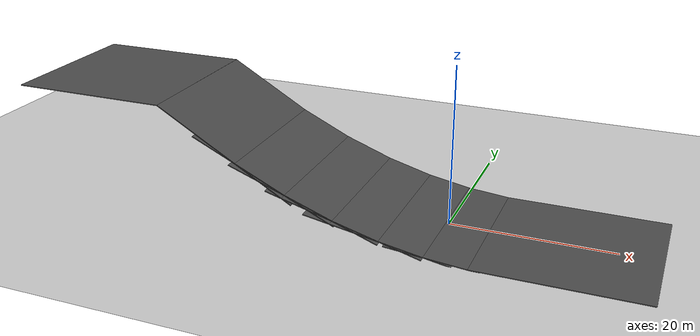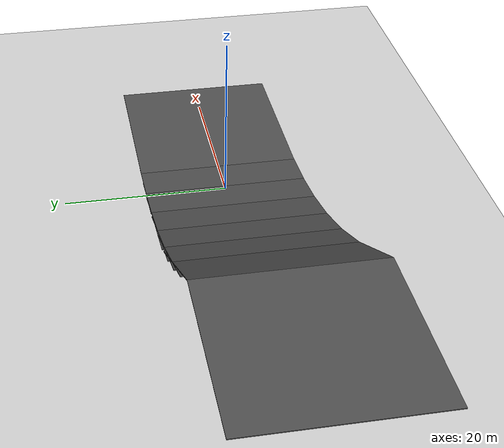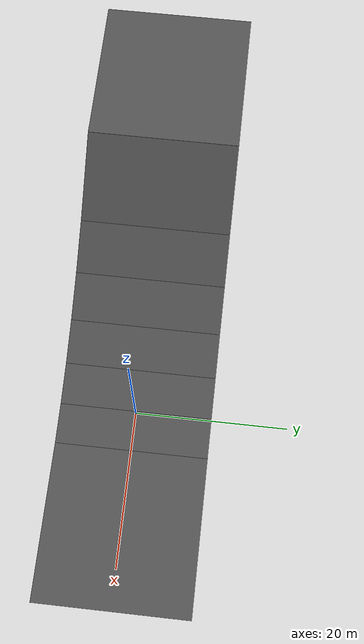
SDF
<sdf version="1.6">
 <world name="default">
  <light name="sun" type="directional">
   <pose>0 0 10 0 -0 0</pose>
   <diffuse>0.8 0.8 0.8 1</diffuse>
   <specular>0.1 0.1 0.1 1</specular>
   <attenuation>
    <range>1000</range>
    <constant>0.9</constant>
    <linear>0.01</linear>
    <quadratic>0.001</quadratic>
   </attenuation>
   <direction>-0.5 0.5 -1</direction>
  </light>
  <model name="ground_plane">
   <static>1</static>
   <link name="link">
    <collision name="collision">
     <geometry><plane><normal>0 0 1</normal><size>100 100</size></plane></geometry>
     <surface><friction><ode><mu>100</mu><mu2>50</mu2></ode></friction></surface>
    </collision>
    <visual name="visual">
     <cast_shadows>0</cast_shadows>
     <geometry><plane><normal>0 0 1</normal><size>100 100</size></plane></geometry>
     <material>
      <script><uri>file://media/materials/scripts/gazebo.material</uri><name>Gazebo/Grey</name></script>
     </material>
    </visual>
   </link>
  </model>
  <gravity>0 0 -9.8</gravity>
  <magnetic_field>6e-06 2.3e-05 -4.2e-05</magnetic_field>
  <atmosphere type="adiabatic"/>
  <physics name="default_physics" default="0" type="ode">
   <max_step_size>0.001</max_step_size>
   <real_time_factor>1</real_time_factor>
   <real_time_update_rate>1000</real_time_update_rate>
  </physics>
  <scene><ambient>0.4 0.4 0.4 1</ambient><background>0.7 0.7 0.7 1</background><shadows>1</shadows></scene>
  <spherical_coordinates>
   <surface_model>EARTH_WGS84</surface_model>
   <latitude_deg>0</latitude_deg>
   <longitude_deg>0</longitude_deg>
   <elevation>0</elevation>
   <heading_deg>0</heading_deg>
  </spherical_coordinates>
  <model name="asphalt_plane_clone_0">
   <static>1</static>
   <link name="link">
    <collision name="collision"><geometry><box><size>20 20 0.1</size></box></geometry></collision>
    <visual name="visual">
     <cast_shadows>0</cast_shadows>
     <geometry><box><size>20 20 0.1</size></box></geometry>
     <material>
      <script>
       <uri>model://asphalt_plane/materials/scripts</uri>
       <uri>model://asphalt_plane/materials/textures</uri>
       <name>vrc/asphalt</name>
      </script>
     </material>
    </visual>
   </link>
   <pose>15 0 0 0 -0 0</pose>
  </model>
  <model name="asphalt_plane_clone">
   <static>1</static>
   <link name="link">
    <collision name="collision"><geometry><box><size>20 20 0.1</size></box></geometry></collision>
    <visual name="visual">
     <cast_shadows>0</cast_shadows>
     <geometry><box><size>20 20 0.1</size></box></geometry>
     <material>
      <script>
       <uri>model://asphalt_plane/materials/scripts</uri>
       <uri>model://asphalt_plane/materials/textures</uri>
       <name>vrc/asphalt</name>
      </script>
     </material>
    </visual>
   </link>
   <pose>5 0 0 0 0.087266 0</pose>
  </model>
  <model name="asphalt_plane_clone_clone">
   <static>1</static>
   <link name="link">
    <collision name="collision"><geometry><box><size>20 20 0.1</size></box></geometry></collision>
    <visual name="visual">
     <cast_shadows>0</cast_shadows>
     <geometry><box><size>20 20 0.1</size></box></geometry>
     <material>
      <script>
       <uri>model://asphalt_plane/materials/scripts</uri>
       <uri>model://asphalt_plane/materials/textures</uri>
       <name>vrc/asphalt</name>
      </script>
     </material>
    </visual>
   </link>
   <pose>-5 0 1.304 0 0.174533 0</pose>
  </model>
  <model name="asphalt_plane_clone_clone_clone">
   <static>1</static>
   <link name="link">
    <collision name="collision"><geometry><box><size>20 20 0.1</size></box></geometry></collision>
    <visual name="visual">
     <cast_shadows>0</cast_shadows>
     <geometry><box><size>20 20 0.1</size></box></geometry>
     <material>
      <script>
       <uri>model://asphalt_plane/materials/scripts</uri>
       <uri>model://asphalt_plane/materials/textures</uri>
       <name>vrc/asphalt</name>
      </script>
     </material>
    </visual>
   </link>
   <pose>-10 0 2.59809 0 0.261799 0</pose>
  </model>
  <model name="asphalt_plane_clone_clone_clone_clone">
   <static>1</static>
   <link name="link">
    <collision name="collision"><geometry><box><size>20 20 0.1</size></box></geometry></collision>
    <visual name="visual">
     <cast_shadows>0</cast_shadows>
     <geometry><box><size>20 20 0.1</size></box></geometry>
     <material>
      <script>
       <uri>model://asphalt_plane/materials/scripts</uri>
       <uri>model://asphalt_plane/materials/textures</uri>
       <name>vrc/asphalt</name>
      </script>
     </material>
    </visual>
   </link>
   <pose>-15 0 4.3082 0 0.349066 0</pose>
  </model>
  <model name="asphalt_plane_clone_clone_clone_clone_clone">
   <static>1</static>
   <link name="link">
    <collision name="collision"><geometry><box><size>20 20 0.1</size></box></geometry></collision>
    <visual name="visual">
     <cast_shadows>0</cast_shadows>
     <geometry><box><size>20 20 0.1</size></box></geometry>
     <material>
      <script>
       <uri>model://asphalt_plane/materials/scripts</uri>
       <uri>model://asphalt_plane/materials/textures</uri>
       <name>vrc/asphalt</name>
      </script>
     </material>
    </visual>
   </link>
   <pose>-20 0 6.42129 0 0.436332 0</pose>
  </model>
  <model name="asphalt_plane_clone_clone_clone_clone_clone_clone">
   <static>1</static>
   <link name="link">
    <collision name="collision"><geometry><box><size>20 20 0.1</size></box></geometry></collision>
    <visual name="visual">
     <cast_shadows>0</cast_shadows>
     <geometry><box><size>20 20 0.1</size></box></geometry>
     <material>
      <script>
       <uri>model://asphalt_plane/materials/scripts</uri>
       <uri>model://asphalt_plane/materials/textures</uri>
       <name>vrc/asphalt</name>
      </script>
     </material>
    </visual>
   </link>
   <pose>-25 0 8.9213 0 0.523599 0</pose>
  </model>
  <model name="asphalt_plane_clone_0_clone">
   <static>1</static>
   <link name="link">
    <collision name="collision"><geometry><box><size>20 20 0.1</size></box></geometry></collision>
    <visual name="visual">
     <cast_shadows>0</cast_shadows>
     <geometry><box><size>20 20 0.1</size></box></geometry>
     <material>
      <script>
       <uri>model://asphalt_plane/materials/scripts</uri>
       <uri>model://asphalt_plane/materials/textures</uri>
       <name>vrc/asphalt</name>
      </script>
     </material>
    </visual>
   </link>
   <pose>-43.625 0 13.9125 0 -0 0</pose>
  </model>
 </world>
</sdf>
